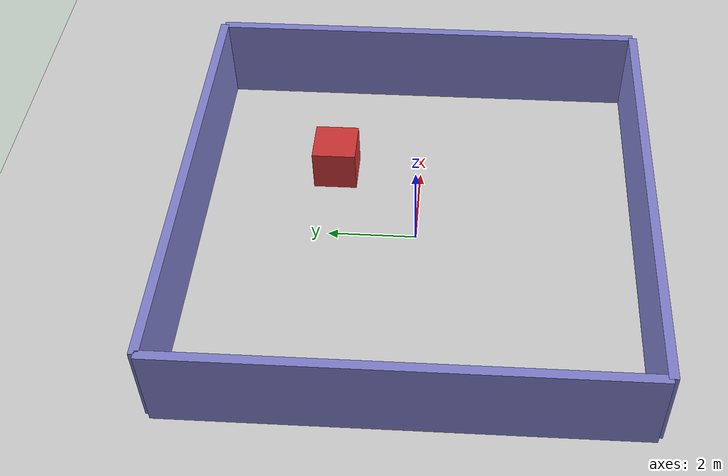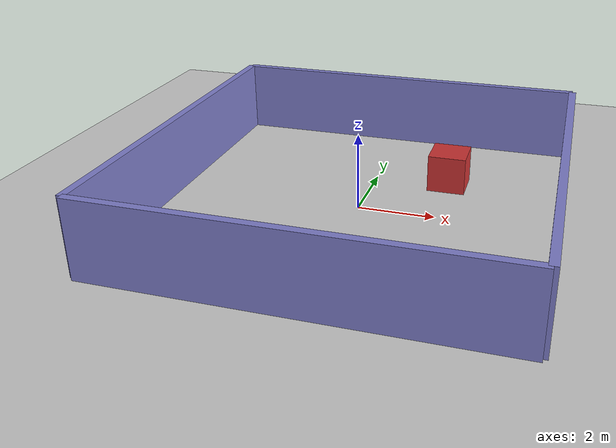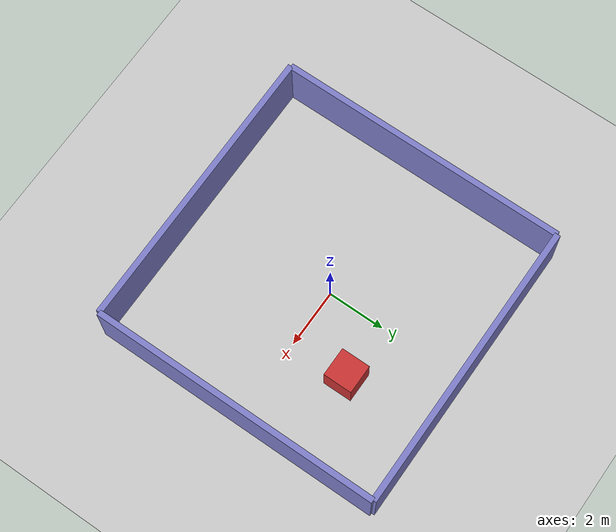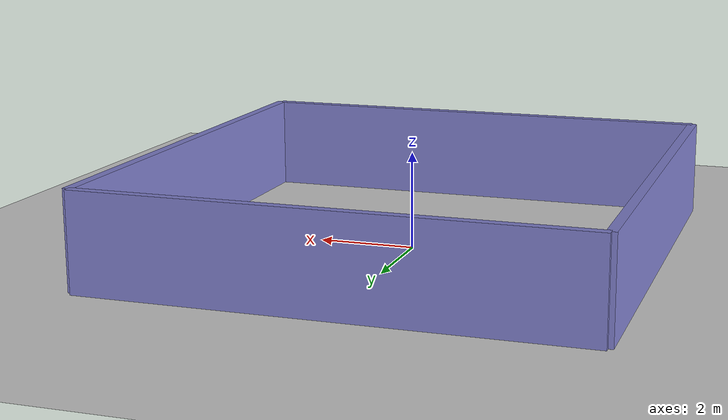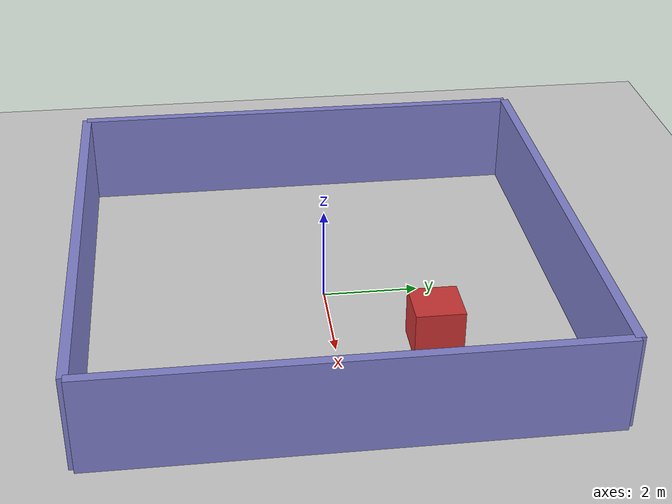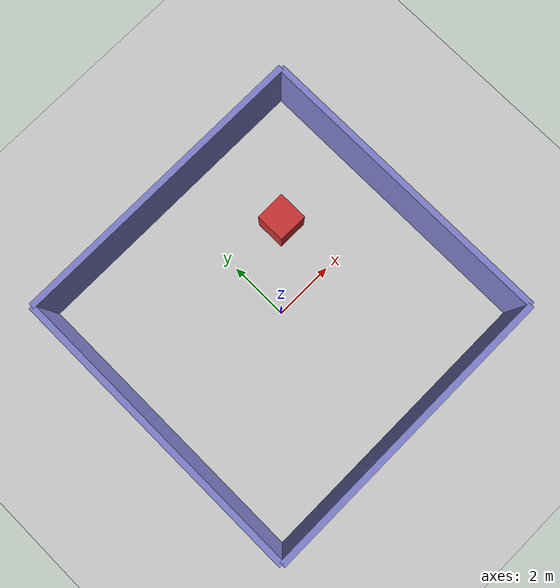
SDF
<?xml version="1.0" ?>
<sdf version="1.8">
  <world name="house_world">
    <!-- Server config -->
    <plugin filename="gz-sim-physics-system" name="gz::sim::systems::Physics"></plugin>
    <plugin filename="gz-sim-user-commands-system" name="gz::sim::systems::UserCommands"></plugin>
    <plugin filename="gz-sim-scene-broadcaster-system" name="gz::sim::systems::SceneBroadcaster"></plugin>
    <plugin filename="gz-sim-sensors-system" name="gz::sim::systems::Sensors">
      <render_engine>ogre2</render_engine>
    </plugin>
    <plugin filename="gz-sim-imu-system" name="gz::sim::systems::Imu"/>

    <!-- Illumination -->
    <light type="directional" name="sun">
      <cast_shadows>true</cast_shadows>
      <pose>0 0 10 0 0 0</pose>
      <diffuse>0.8 0.8 0.8 1</diffuse>
      <specular>0.2 0.2 0.2 1</specular>
      <direction>-0.5 0.1 -0.9</direction>
    </light>

    <!-- Ground Plane -->
    <model name="ground_plane">
      <static>true</static>
      <link name="link">
        <collision name="collision">
          <geometry>
            <plane>
              <normal>0 0 1</normal>
              <size>100 100</size>
            </plane>
          </geometry>
        </collision>
        <visual name="visual">
          <geometry>
            <plane>
              <normal>0 0 1</normal>
              <size>100 100</size>
            </plane>
          </geometry>
          <material>
            <ambient>0.8 0.8 0.8 1</ambient>
            <diffuse>0.8 0.8 0.8 1</diffuse>
            <specular>0.8 0.8 0.8 1</specular>
          </material>
        </visual>
      </link>
    </model>

    <!-- Walls -->
    <model name="wall_1">
      <static>true</static>
      <pose>0 5 1 0 0 0</pose>
      <link name="link">
        <collision name="col"><geometry><box><size>10 0.2 2</size></box></geometry></collision>
        <visual name="vis"><geometry><box><size>10 0.2 2</size></box></geometry><material><ambient>0.5 0.5 0.8 1</ambient></material></visual>
      </link>
    </model>

    <model name="wall_2">
      <static>true</static>
      <pose>0 -5 1 0 0 0</pose>
      <link name="link">
        <collision name="col"><geometry><box><size>10 0.2 2</size></box></geometry></collision>
        <visual name="vis"><geometry><box><size>10 0.2 2</size></box></geometry><material><ambient>0.5 0.5 0.8 1</ambient></material></visual>
      </link>
    </model>

    <model name="wall_3">
      <static>true</static>
      <pose>5 0 1 0 0 1.5708</pose>
      <link name="link">
        <collision name="col"><geometry><box><size>10 0.2 2</size></box></geometry></collision>
        <visual name="vis"><geometry><box><size>10 0.2 2</size></box></geometry><material><ambient>0.5 0.5 0.8 1</ambient></material></visual>
      </link>
    </model>

    <model name="wall_4">
      <static>true</static>
      <pose>-5 0 1 0 0 1.5708</pose>
      <link name="link">
        <collision name="col"><geometry><box><size>10 0.2 2</size></box></geometry></collision>
        <visual name="vis"><geometry><box><size>10 0.2 2</size></box></geometry><material><ambient>0.5 0.5 0.8 1</ambient></material></visual>
      </link>
    </model>

    <!-- Obstacle in middle -->
    <model name="obstacle_1">
      <static>true</static>
      <pose>2 2 0.5 0 0 0</pose>
      <link name="link">
        <collision name="col"><geometry><box><size>1 1 1</size></box></geometry></collision>
        <visual name="vis"><geometry><box><size>1 1 1</size></box></geometry><material><ambient>0.8 0.2 0.2 1</ambient></material></visual>
      </link>
    </model>

  </world>
</sdf>
